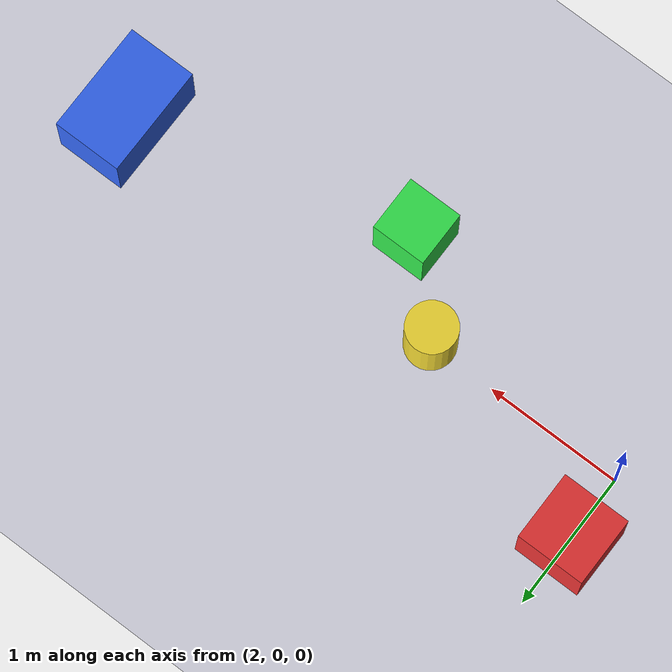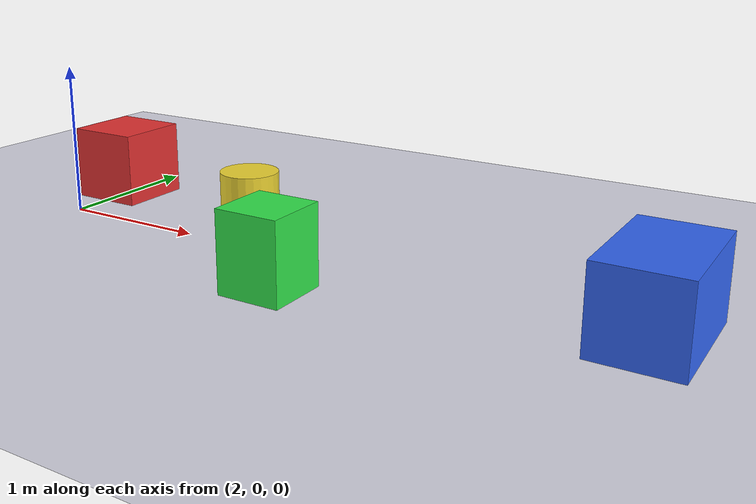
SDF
<?xml version="1.0" ?>
<sdf version="1.8">
  <world name="obstacles">

    <plugin filename="gz-sim-physics-system" name="gz::sim::systems::Physics"/>
    <plugin filename="gz-sim-user-commands-system" name="gz::sim::systems::UserCommands"/>
    <plugin filename="gz-sim-scene-broadcaster-system" name="gz::sim::systems::SceneBroadcaster"/>
    <plugin filename="gz-sim-sensors-system" name="gz::sim::systems::Sensors"/>

    <!-- Nice lighting -->
    <light name="sun" type="directional">
      <cast_shadows>true</cast_shadows>
      <pose>0 0 10 0 0 0</pose>
      <diffuse>1 1 1 1</diffuse>
      <specular>0.2 0.2 0.2 1</specular>
      <direction>-0.2 0.2 -1</direction>
    </light>

    <!-- Ground -->
    <model name="ground_plane">
      <static>true</static>
      <link name="link">
        <collision name="collision">
          <geometry>
            <plane>
              <normal>0 0 1</normal>
              <size>50 50</size>
            </plane>
          </geometry>
        </collision>

        <visual name="visual">
          <geometry>
            <plane>
              <normal>0 0 1</normal>
              <size>50 50</size>
            </plane>
          </geometry>
          <material>
            <ambient>0.85 0.85 0.90 1</ambient>
            <diffuse>0.85 0.85 0.90 1</diffuse>
            <specular>0.05 0.05 0.05 1</specular>
          </material>
        </visual>
      </link>
    </model>

    <!-- Helper: a few colored boxes -->
    <model name="box_red">
      <static>true</static>
      <pose>2 0.5 0.25 0 0 0</pose>
      <link name="link">
        <collision name="collision">
          <geometry><box><size>0.5 0.5 0.5</size></box></geometry>
        </collision>
        <visual name="visual">
          <geometry><box><size>0.5 0.5 0.5</size></box></geometry>
          <material>
            <ambient>0.9 0.2 0.2 1</ambient>
            <diffuse>0.9 0.2 0.2 1</diffuse>
          </material>
        </visual>
      </link>
    </model>

    <model name="box_green">
      <static>true</static>
      <pose>4 -0.5 0.25 0 0 0</pose>
      <link name="link">
        <collision name="collision">
          <geometry><box><size>0.4 0.4 0.5</size></box></geometry>
        </collision>
        <visual name="visual">
          <geometry><box><size>0.4 0.4 0.5</size></box></geometry>
          <material>
            <ambient>0.2 0.9 0.3 1</ambient>
            <diffuse>0.2 0.9 0.3 1</diffuse>
          </material>
        </visual>
      </link>
    </model>

    <model name="box_blue">
      <static>true</static>
      <pose>6 0.0 0.25 0 0 0</pose>
      <link name="link">
        <collision name="collision">
          <geometry><box><size>0.5 0.8 0.5</size></box></geometry>
        </collision>
        <visual name="visual">
          <geometry><box><size>0.5 0.8 0.5</size></box></geometry>
          <material>
            <ambient>0.2 0.4 0.95 1</ambient>
            <diffuse>0.2 0.4 0.95 1</diffuse>
          </material>
        </visual>
      </link>
    </model>

    <!-- A few “cones” (cylinders) to make it look richer -->
    <model name="cyl_yellow">
      <static>true</static>
      <pose>3.5 0.0 0.25 0 0 0</pose>
      <link name="link">
        <collision name="collision">
          <geometry><cylinder><radius>0.18</radius><length>0.5</length></cylinder></geometry>
        </collision>
        <visual name="visual">
          <geometry><cylinder><radius>0.18</radius><length>0.5</length></cylinder></geometry>
          <material>
            <ambient>0.95 0.85 0.2 1</ambient>
            <diffuse>0.95 0.85 0.2 1</diffuse>
          </material>
        </visual>
      </link>
    </model>

  </world>
</sdf>
